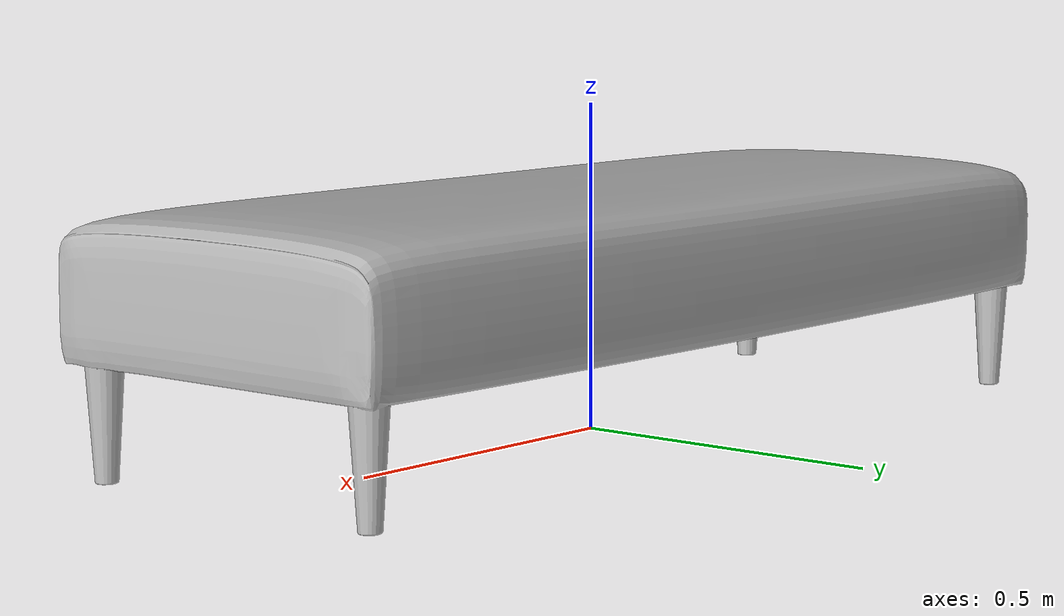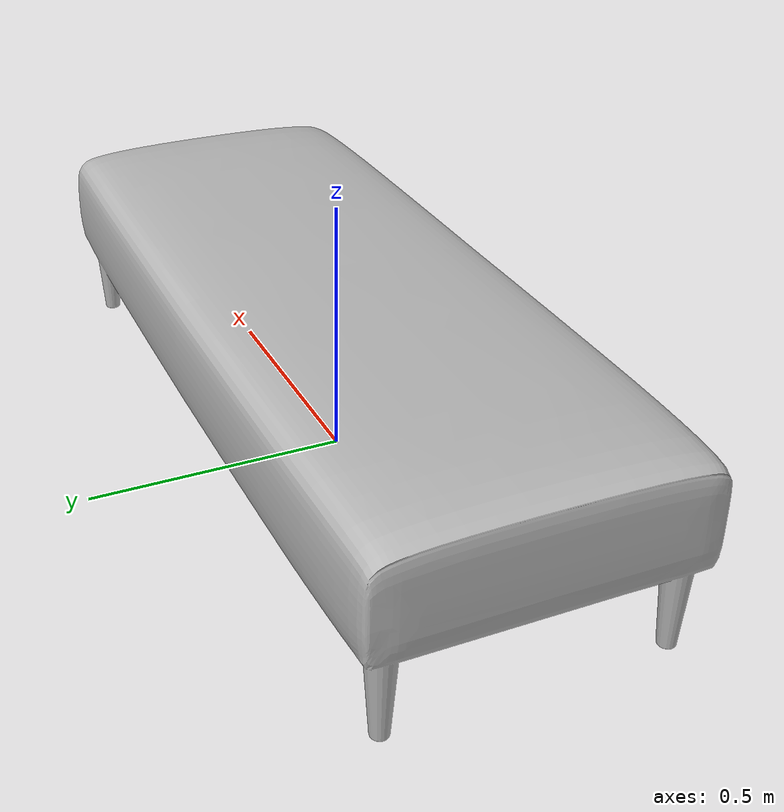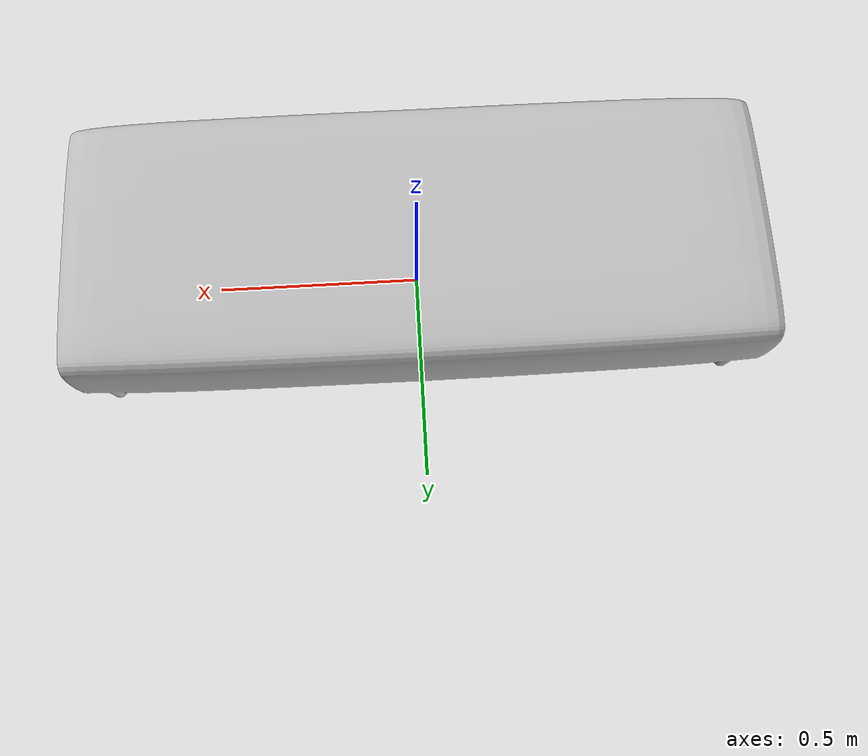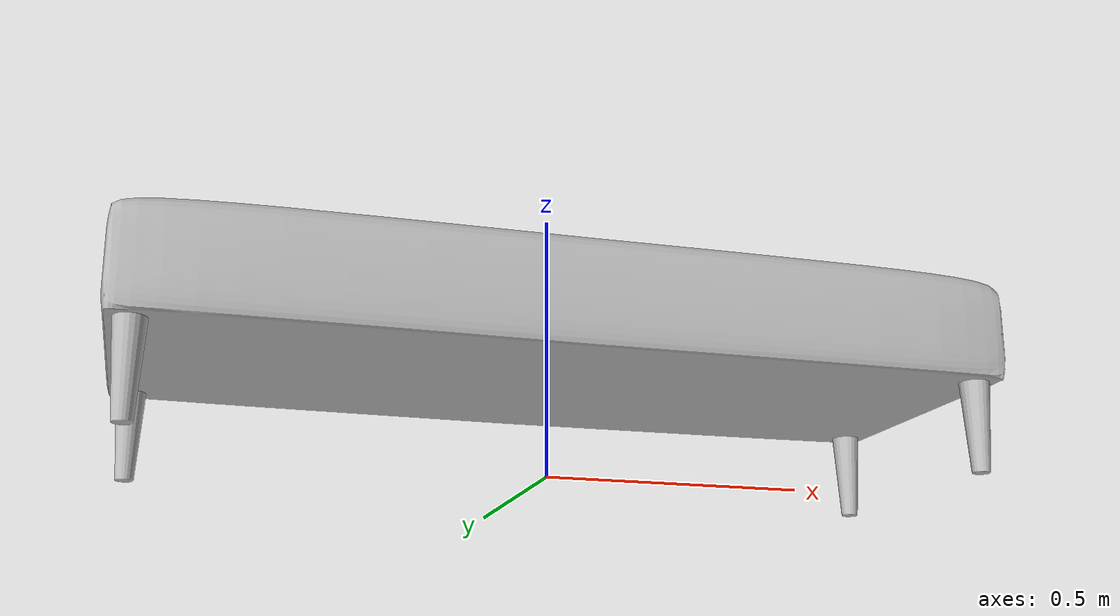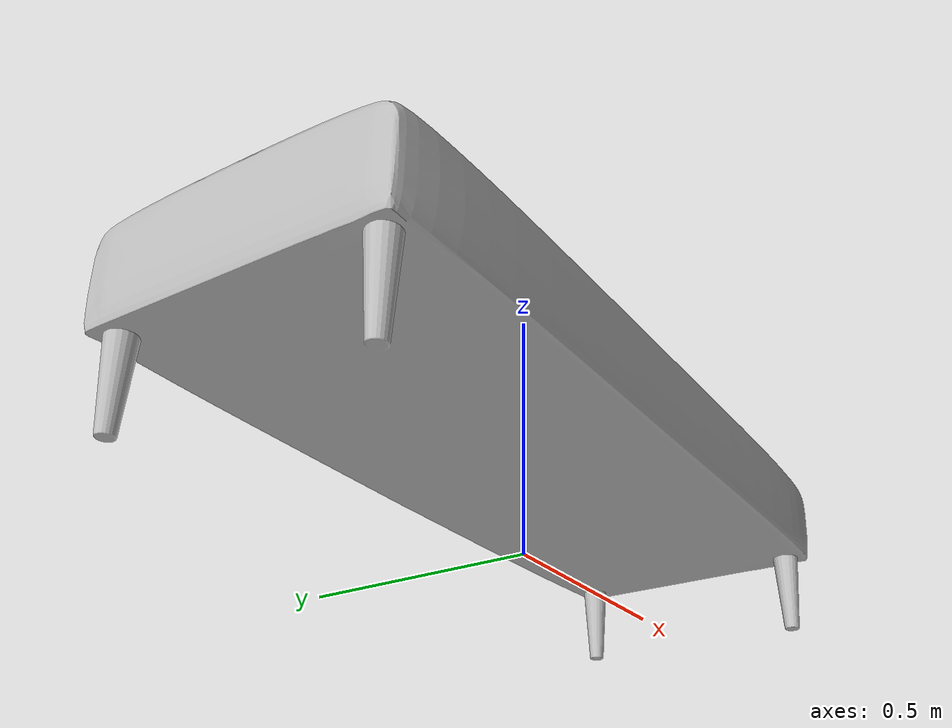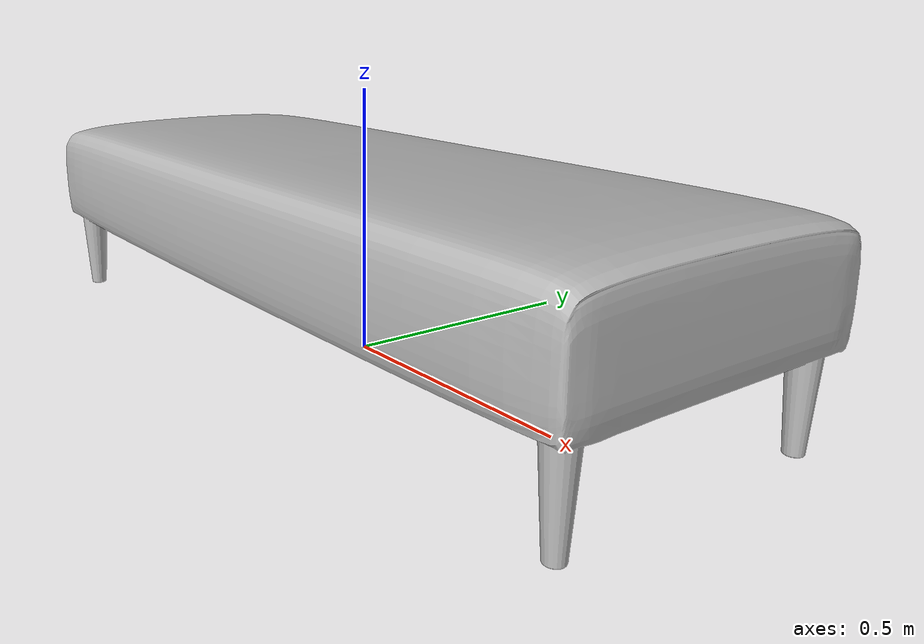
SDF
<sdf version="1.6">
	<model name="Ottomans_Oe0e3f5670b60_lod0">
		<link name="main_link">
			<visual name="visual_RootNode">
				<geometry>
					<mesh>
						<uri>model://Ottomans_Oe0e3f5670b60_lod0/meshes/visual_RootNode.dae</uri>
					</mesh>
				</geometry>
			</visual>
			<collision name="collision_RootNode_lod0_0">
				<geometry>
					<mesh>
						<uri>model://Ottomans_Oe0e3f5670b60_lod0/meshes/collision_RootNode_lod0_0.dae</uri>
					</mesh>
				</geometry>
			</collision>
		</link>
	</model>
</sdf>
